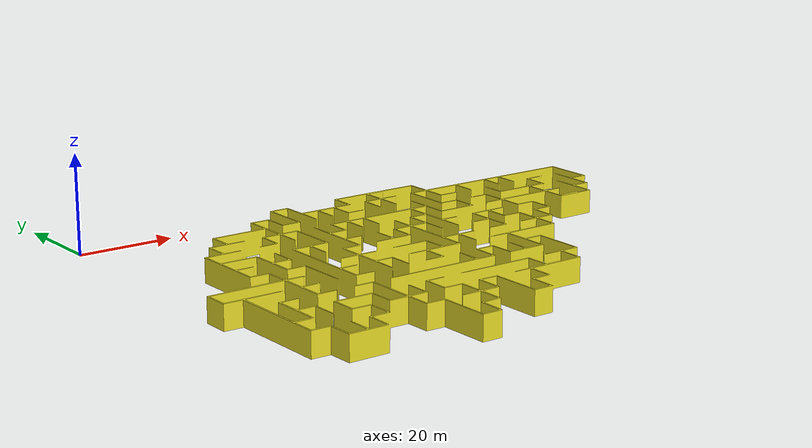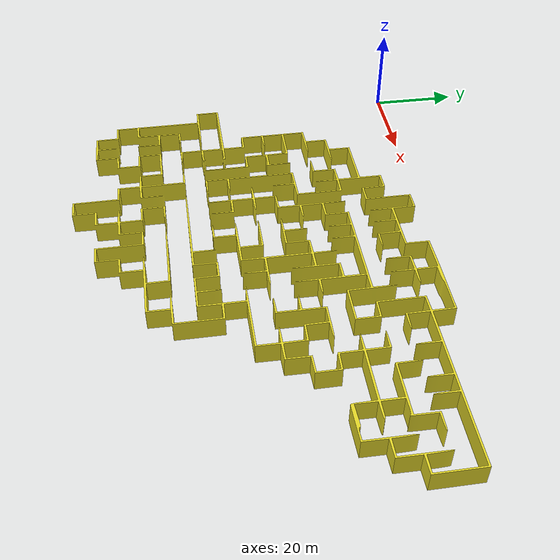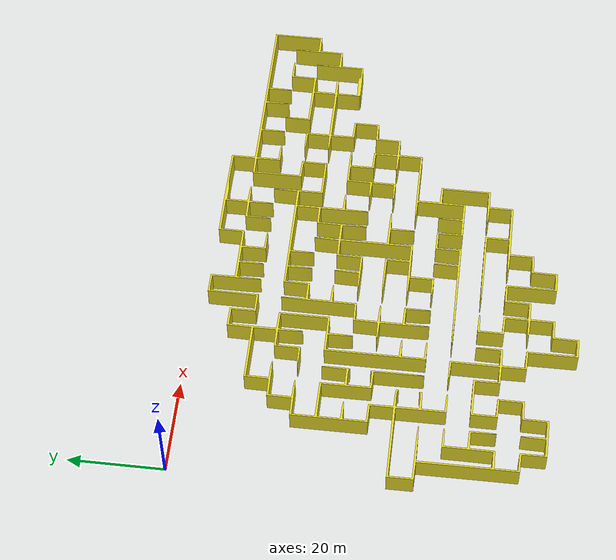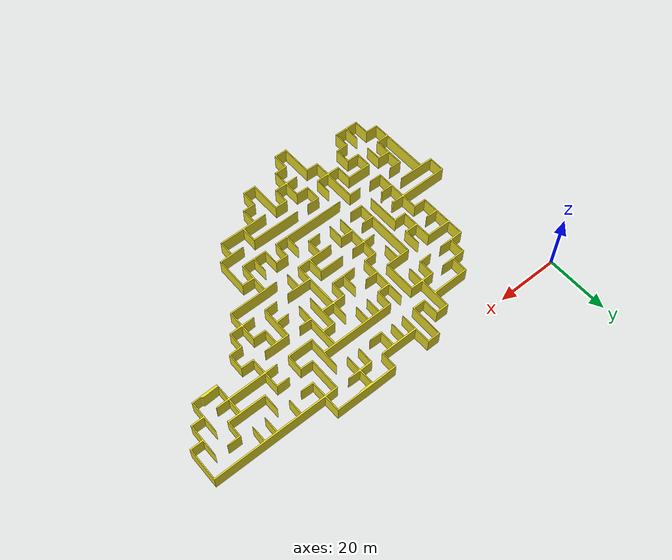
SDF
<?xml version="1.0" ?>
<sdf version="1.5">
  <model name="rcap_indoor1">
    <static>true</static>
    <pose>0 0 0 0 0 0</pose>
    <link name="link">
      <collision name="collision">
        <geometry>
          <mesh>
            <uri>model://rcap_indoor1/rcap_indoor1.stl</uri>
            <scale>355 461 500</scale>
          </mesh>
        </geometry>
      </collision>
      <visual name="visual">
        <geometry>
          <mesh>
            <uri>model://rcap_indoor1/rcap_indoor1.stl</uri>
            <scale>355 461 500</scale>
          </mesh>
        </geometry>
        <cast_shadows>false</cast_shadows>
        <material>
          <script>
            <uri>file://media/materials/scripts/gazebo.material</uri>
            <name>Gazebo/Yellow</name>
          </script>
        </material>
      </visual>
    </link>
  </model>
</sdf>
